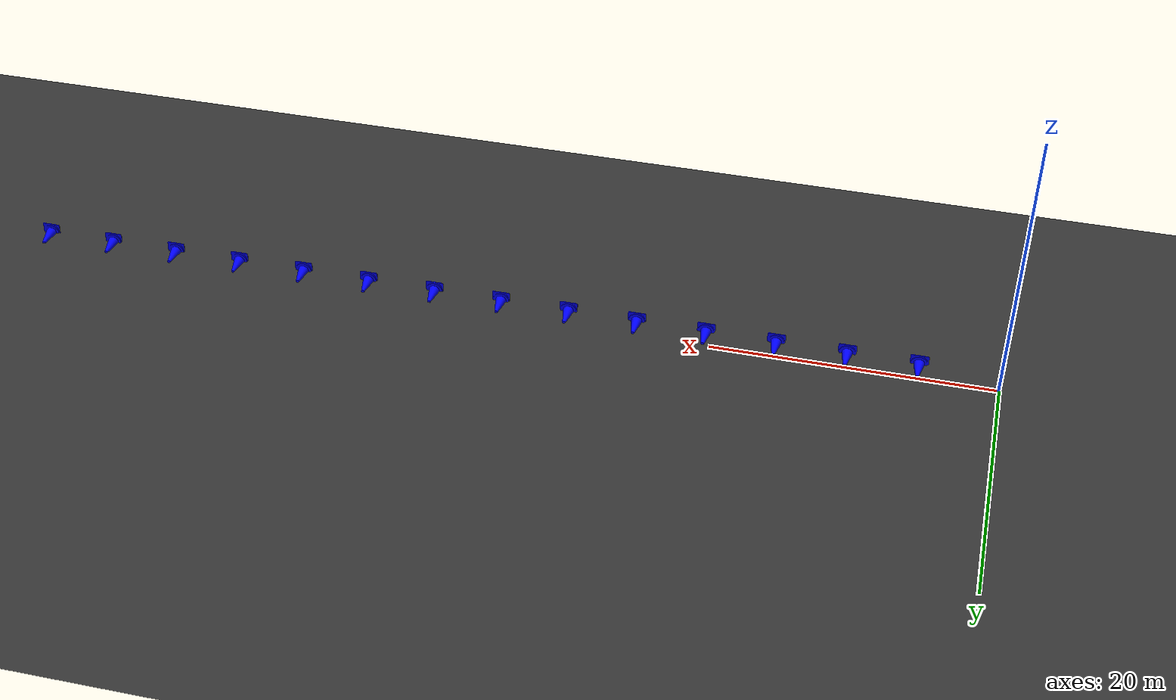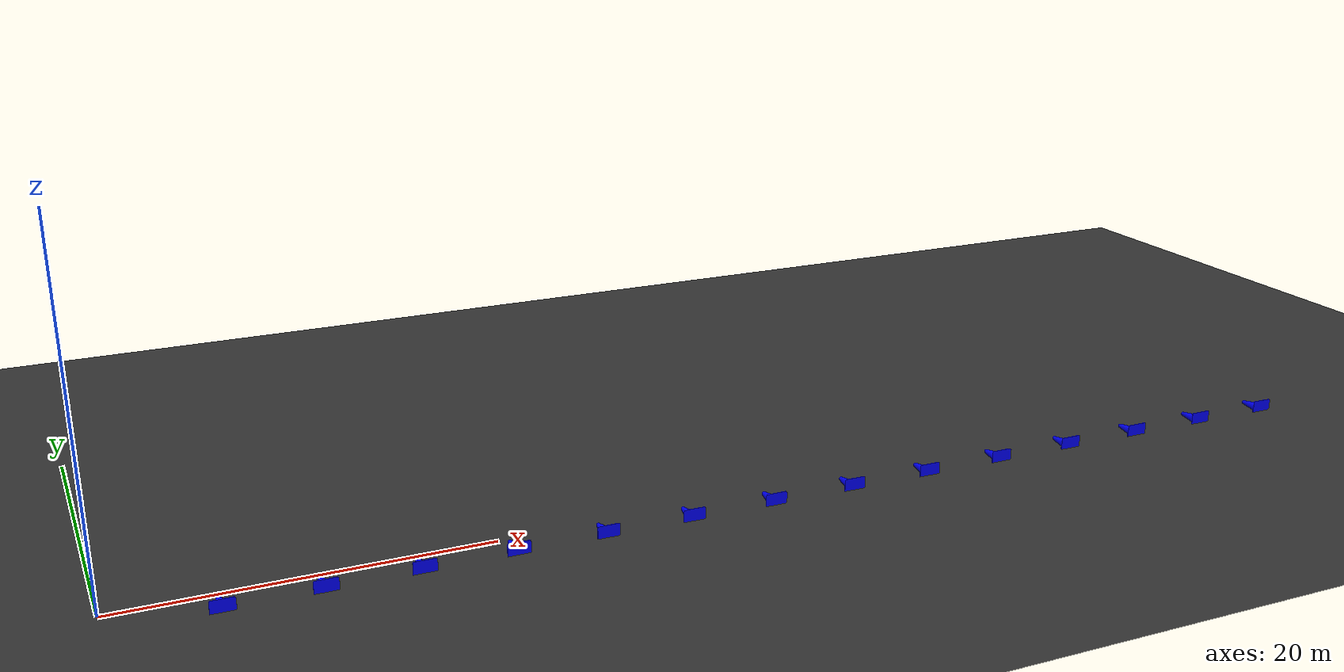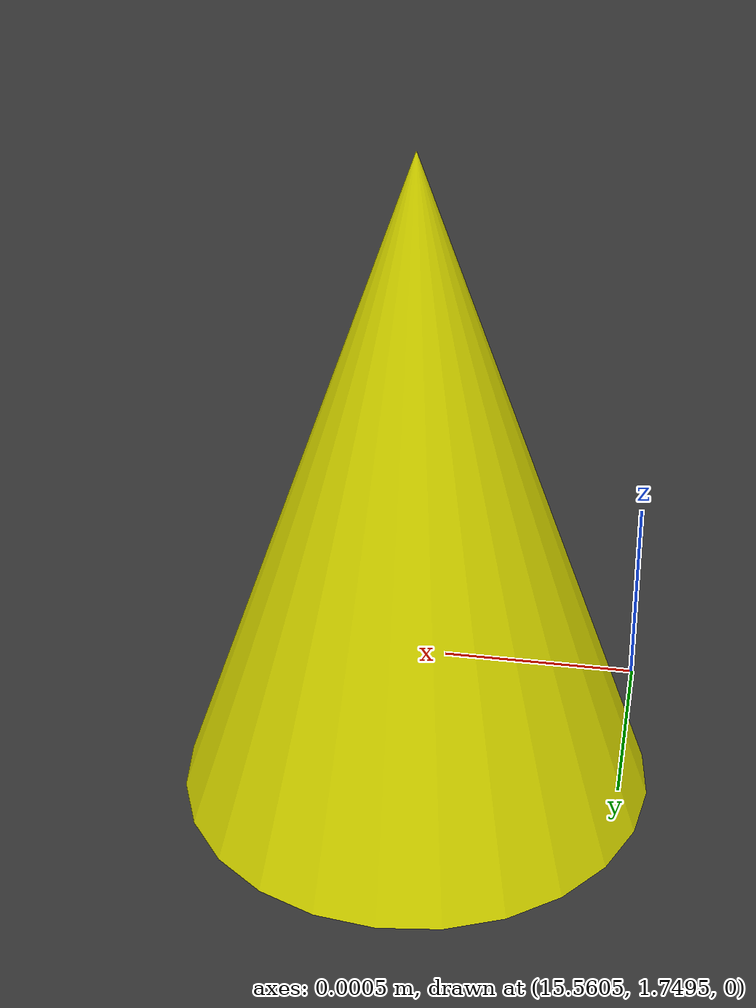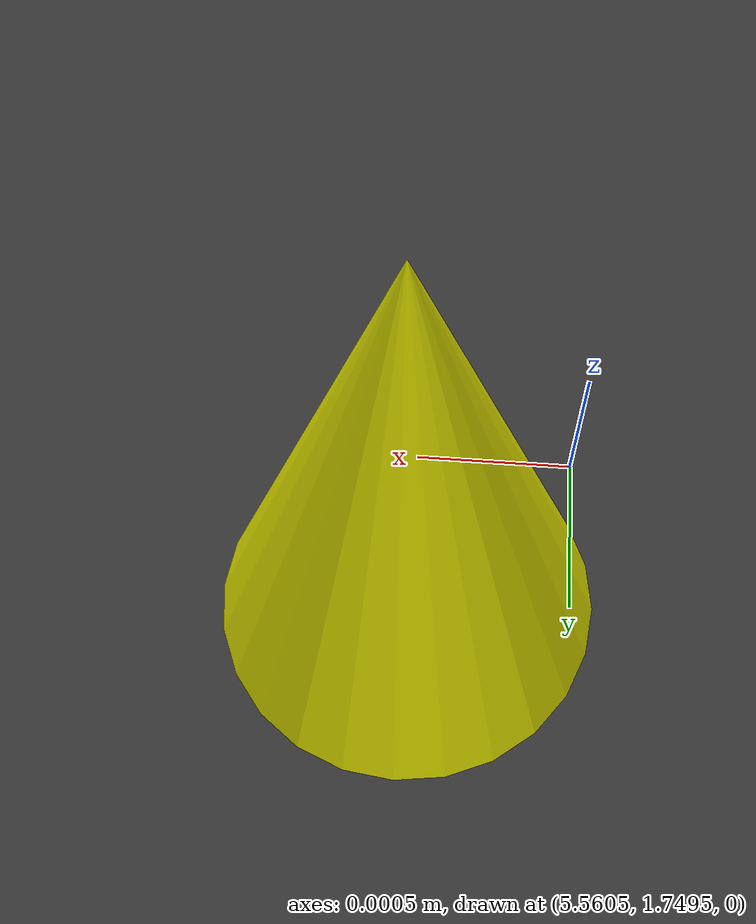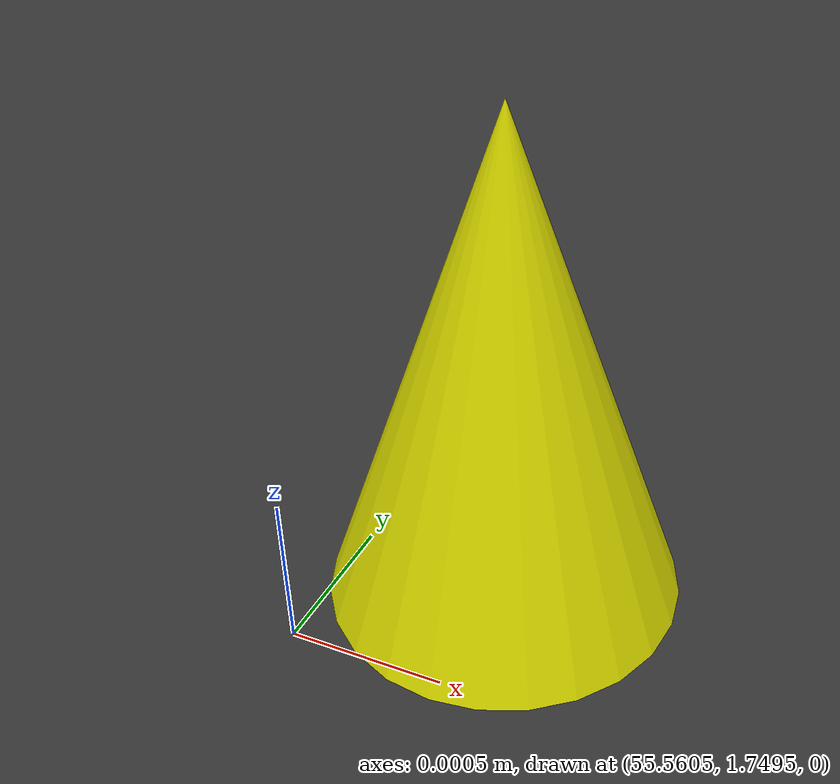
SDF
<sdf version="1.7">
 <world name="generated_world">
  <scene><sky><clouds><speed>12</speed></clouds></sky><grid>false</grid><shadows>1</shadows></scene>
  <physics type="ode">
   <max_step_size>0.001</max_step_size>
   <real_time_update_rate>1000</real_time_update_rate>
  </physics>
  <plugin filename="gz-sim-physics-system" name="gz::sim::systems::Physics"/>
  <plugin filename="gz-sim-user-commands-system" name="gz::sim::systems::UserCommands"/>
  <plugin filename="gz-sim-scene-broadcaster-system" name="gz::sim::systems::SceneBroadcaster"/>
  <plugin filename="gz-sim-contact-system" name="gz::sim::systems::Contact"/>
  <light name="sun" type="directional">
   <pose>0 0 10 0 0 0</pose>
   <diffuse>1 1 1 1</diffuse>
   <specular>0.2 0.2 0.2 1</specular>
   <direction>-0.5 0.2 -1</direction>
   <attenuation>
    <range>300</range>
    <constant>0.9</constant>
    <linear>0.01</linear>
    <quadratic>0.001</quadratic>
   </attenuation>
  </light>
  <model name="asphalt_ground">
   <static>1</static>
   <link name="link">
    <collision name="collision">
     <geometry><plane><normal>0 0 1</normal><size>300 300</size></plane></geometry>
     <surface><friction><ode><mu>100</mu><mu2>50</mu2></ode></friction></surface>
    </collision>
    <visual name="visual">
     <geometry><plane><normal>0 0 1</normal><size>300 300</size></plane></geometry>
     <material>
      <ambient>0.2 0.2 0.2 1</ambient>
      <diffuse>0.2 0.2 0.2 1</diffuse>
      <specular>0.1 0.1 0.1 1</specular>
     </material>
    </visual>
   </link>
  </model>
  <include><uri>model://cone_yellow</uri><name>cone_yellow_001</name><pose>5.561 1.750 0 0 0 0</pose></include>
  <include><uri>model://cone_yellow</uri><name>cone_yellow_002</name><pose>10.561 1.750 0 0 0 0</pose></include>
  <include><uri>model://cone_yellow</uri><name>cone_yellow_003</name><pose>15.561 1.750 0 0 0 0</pose></include>
  <include><uri>model://cone_yellow</uri><name>cone_yellow_004</name><pose>20.561 1.750 0 0 0 0</pose></include>
  <include><uri>model://cone_yellow</uri><name>cone_yellow_005</name><pose>25.561 1.750 0 0 0 0</pose></include>
  <include><uri>model://cone_yellow</uri><name>cone_yellow_006</name><pose>30.561 1.750 0 0 0 0</pose></include>
  <include><uri>model://cone_yellow</uri><name>cone_yellow_007</name><pose>35.561 1.750 0 0 0 0</pose></include>
  <include><uri>model://cone_yellow</uri><name>cone_yellow_008</name><pose>40.561 1.750 0 0 0 0</pose></include>
  <include><uri>model://cone_yellow</uri><name>cone_yellow_009</name><pose>45.561 1.750 0 0 0 0</pose></include>
  <include><uri>model://cone_yellow</uri><name>cone_yellow_010</name><pose>50.561 1.750 0 0 0 0</pose></include>
  <include><uri>model://cone_yellow</uri><name>cone_yellow_011</name><pose>55.561 1.750 0 0 0 0</pose></include>
  <include><uri>model://cone_yellow</uri><name>cone_yellow_012</name><pose>60.561 1.750 0 0 0 0</pose></include>
  <include><uri>model://cone_yellow</uri><name>cone_yellow_013</name><pose>65.561 1.750 0 0 0 0</pose></include>
  <include><uri>model://cone_yellow</uri><name>cone_yellow_014</name><pose>70.561 1.750 0 0 0 0</pose></include>
  <include><uri>model://cone_blue</uri><name>cone_blue_001</name><pose>5.561 -1.750 0 0 0 0</pose></include>
  <include><uri>model://cone_blue</uri><name>cone_blue_002</name><pose>10.561 -1.750 0 0 0 0</pose></include>
  <include><uri>model://cone_blue</uri><name>cone_blue_003</name><pose>15.561 -1.750 0 0 0 0</pose></include>
  <include><uri>model://cone_blue</uri><name>cone_blue_004</name><pose>20.561 -1.750 0 0 0 0</pose></include>
  <include><uri>model://cone_blue</uri><name>cone_blue_005</name><pose>25.561 -1.750 0 0 0 0</pose></include>
  <include><uri>model://cone_blue</uri><name>cone_blue_006</name><pose>30.561 -1.750 0 0 0 0</pose></include>
  <include><uri>model://cone_blue</uri><name>cone_blue_007</name><pose>35.561 -1.750 0 0 0 0</pose></include>
  <include><uri>model://cone_blue</uri><name>cone_blue_008</name><pose>40.561 -1.750 0 0 0 0</pose></include>
  <include><uri>model://cone_blue</uri><name>cone_blue_009</name><pose>45.561 -1.750 0 0 0 0</pose></include>
  <include><uri>model://cone_blue</uri><name>cone_blue_010</name><pose>50.561 -1.750 0 0 0 0</pose></include>
  <include><uri>model://cone_blue</uri><name>cone_blue_011</name><pose>55.561 -1.750 0 0 0 0</pose></include>
  <include><uri>model://cone_blue</uri><name>cone_blue_012</name><pose>60.561 -1.750 0 0 0 0</pose></include>
  <include><uri>model://cone_blue</uri><name>cone_blue_013</name><pose>65.561 -1.750 0 0 0 0</pose></include>
  <include><uri>model://cone_blue</uri><name>cone_blue_014</name><pose>70.561 -1.750 0 0 0 0</pose></include>
 </world>
</sdf>

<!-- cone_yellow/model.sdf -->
<sdf version="1.6">
  <model name="cone_yellow">
    <static>1</static>
    <link name="link">

      <visual name="visual">
        <pose>0 0 0 0 0 0</pose>
        <geometry>
          <mesh>
            <uri>model://cone_yellow/meshes/cone.stl</uri>
            <scale>0.005 0.005 0.005</scale>
          </mesh>
        </geometry>
        <material>
          <ambient>1.0 1.0 0.0 1</ambient>
          <diffuse>1.0 1.0 0.0 1</diffuse>
        </material>
      </visual>

      <collision name="collision">
        <pose>0 0 0.15 0 0 0</pose>
        <geometry>
          <cylinder>
            <radius>0.1</radius>
            <length>0.3</length>
          </cylinder>
        </geometry>
        <surface>
          <friction>
            <ode>
              <mu>0.9</mu> <mu2>0.9</mu2> </ode>
          </friction>
        </surface>
      </collision>

      <inertial>
        <pose>0 0 0.05 0 0 0</pose>
        <mass>1</mass>
        <inertia>
          <ixx>0.01</ixx> <iyy>0.01</iyy> <izz>0.005</izz>
          <ixy>0.0</ixy> <ixz>0.0</ixz> <iyz>0.0</iyz>
        </inertia>
      </inertial>

    </link>
  </model>
</sdf>

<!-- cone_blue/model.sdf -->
<sdf version="1.6">
  <model name="cone_blue">
    <static>1</static>
    <link name="link">

      <inertial>
        <pose>0 0 0.05 0 0 0</pose> <mass>1</mass>
        <inertia>
          <ixx>0.01</ixx> <iyy>0.01</iyy> <izz>0.005</izz>
          <ixy>0.0</ixy> <ixz>0.0</ixz> <iyz>0.0</iyz>
        </inertia>
      </inertial>

      <collision name="collision">
        <pose>0 0 0.15 0 0 0</pose>
        <geometry>
          <cylinder>
            <radius>0.1</radius>
            <length>0.3</length>
          </cylinder>
        </geometry>
      </collision>

      <visual name="visual">
        <pose>0 0 0 0 0 0</pose>
        <geometry>
          <mesh>
            <uri>model://cone_blue/meshes/cone.stl</uri>
            <scale>0.005 0.005 0.005</scale>
          </mesh>
        </geometry>
        <material>
          <ambient>0.0 0.0 1.0 1</ambient>
          <diffuse>0.0 0.0 1.0 1</diffuse>
        </material>
      </visual>

    </link>
  </model>
</sdf>
